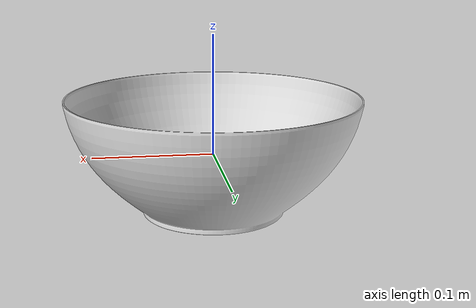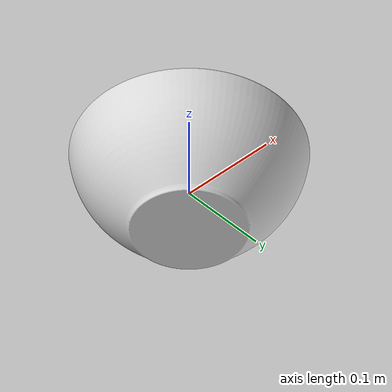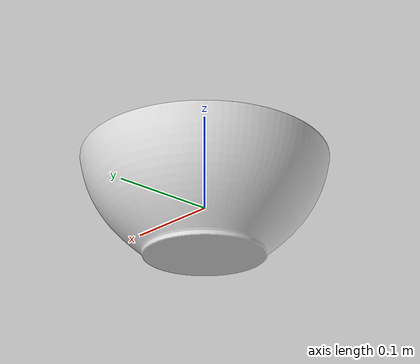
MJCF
<?xml version="1.0" ?>
<mujoco model="large_bowl">
	<compiler meshdir="large_bowl/meshes" texturedir="large_bowl/textures" angle="radian" autolimits="true" balanceinertia="true" boundmass="0.000001" boundinertia="0.000001"/>
	<default>
		<default class="visual">
			<geom contype="0" conaffinity="0"/>
		</default>
		<default class="collision">
			<geom rgba="1.0 0.0 0.0 0.0"/>
		</default>
	</default>
	<asset>
		<mesh name="BowlLargeSize" file="stl/BowlLargeSize.stl" scale="1.0 1.0 1.0"/>
		<mesh name="BowlLargeSize_001" file="stl/BowlLargeSize_001.stl" scale="1.0 1.0 1.0"/>
		<mesh name="BowlLargeSize_002" file="stl/BowlLargeSize_002.stl" scale="1.0 1.0 1.0"/>
		<mesh name="BowlLargeSize_003" file="stl/BowlLargeSize_003.stl" scale="1.0 1.0 1.0"/>
		<mesh name="BowlLargeSize_004" file="stl/BowlLargeSize_004.stl" scale="1.0 1.0 1.0"/>
		<mesh name="BowlLargeSize_005" file="stl/BowlLargeSize_005.stl" scale="1.0 1.0 1.0"/>
		<mesh name="BowlLargeSize_006" file="stl/BowlLargeSize_006.stl" scale="1.0 1.0 1.0"/>
		<mesh name="BowlLargeSize_007" file="stl/BowlLargeSize_007.stl" scale="1.0 1.0 1.0"/>
		<mesh name="BowlLargeSize_008" file="stl/BowlLargeSize_008.stl" scale="1.0 1.0 1.0"/>
		<mesh name="BowlLargeSize_009" file="stl/BowlLargeSize_009.stl" scale="1.0 1.0 1.0"/>
		<mesh name="BowlLargeSize_010" file="stl/BowlLargeSize_010.stl" scale="1.0 1.0 1.0"/>
		<mesh name="BowlLargeSize_011" file="stl/BowlLargeSize_011.stl" scale="1.0 1.0 1.0"/>
		<mesh name="BowlLargeSize_012" file="stl/BowlLargeSize_012.stl" scale="1.0 1.0 1.0"/>
		<mesh name="BowlLargeSize_013" file="stl/BowlLargeSize_013.stl" scale="1.0 1.0 1.0"/>
		<mesh name="BowlLargeSize_014" file="stl/BowlLargeSize_014.stl" scale="1.0 1.0 1.0"/>
		<mesh name="BowlLargeSize_015" file="stl/BowlLargeSize_015.stl" scale="1.0 1.0 1.0"/>
		<mesh name="BowlLargeSize_016" file="stl/BowlLargeSize_016.stl" scale="1.0 1.0 1.0"/>
		<mesh name="BowlLargeSize_017" file="stl/BowlLargeSize_017.stl" scale="1.0 1.0 1.0"/>
		<mesh name="BowlLargeSize_018" file="stl/BowlLargeSize_018.stl" scale="1.0 1.0 1.0"/>
		<mesh name="BowlLargeSize_019" file="stl/BowlLargeSize_019.stl" scale="1.0 1.0 1.0"/>
		<mesh name="BowlLargeSize_020" file="stl/BowlLargeSize_020.stl" scale="1.0 1.0 1.0"/>
		<mesh name="BowlLargeSize_021" file="stl/BowlLargeSize_021.stl" scale="1.0 1.0 1.0"/>
		<mesh name="BowlLargeSize_022" file="stl/BowlLargeSize_022.stl" scale="1.0 1.0 1.0"/>
		<mesh name="BowlLargeSize_023" file="stl/BowlLargeSize_023.stl" scale="1.0 1.0 1.0"/>
		<mesh name="BowlLargeSize_024" file="stl/BowlLargeSize_024.stl" scale="1.0 1.0 1.0"/>
		<mesh name="BowlLargeSize_025" file="stl/BowlLargeSize_025.stl" scale="1.0 1.0 1.0"/>
		<mesh name="BowlLargeSize_026" file="stl/BowlLargeSize_026.stl" scale="1.0 1.0 1.0"/>
		<mesh name="BowlLargeSize_027" file="stl/BowlLargeSize_027.stl" scale="1.0 1.0 1.0"/>
		<mesh name="BowlLargeSize_028" file="stl/BowlLargeSize_028.stl" scale="1.0 1.0 1.0"/>
		<mesh name="BowlLargeSize_029" file="stl/BowlLargeSize_029.stl" scale="1.0 1.0 1.0"/>
		<mesh name="BowlLargeSize_030" file="stl/BowlLargeSize_030.stl" scale="1.0 1.0 1.0"/>
		<mesh name="BowlLargeSize_031" file="stl/BowlLargeSize_031.stl" scale="1.0 1.0 1.0"/>
		<mesh name="BowlLargeSize_032" file="stl/BowlLargeSize_032.stl" scale="1.0 1.0 1.0"/>
		<mesh name="BowlLargeSize_033" file="stl/BowlLargeSize_033.stl" scale="1.0 1.0 1.0"/>
		<mesh name="BowlLargeSize_034" file="stl/BowlLargeSize_034.stl" scale="1.0 1.0 1.0"/>
		<mesh name="BowlLargeSize_035" file="stl/BowlLargeSize_035.stl" scale="1.0 1.0 1.0"/>
		<mesh name="BowlLargeSize_036" file="stl/BowlLargeSize_036.stl" scale="1.0 1.0 1.0"/>
		<mesh name="BowlLargeSize_037" file="stl/BowlLargeSize_037.stl" scale="1.0 1.0 1.0"/>
		<mesh name="BowlLargeSize_038" file="stl/BowlLargeSize_038.stl" scale="1.0 1.0 1.0"/>
		<mesh name="BowlLargeSize_039" file="stl/BowlLargeSize_039.stl" scale="1.0 1.0 1.0"/>
		<mesh name="BowlLargeSize_040" file="stl/BowlLargeSize_040.stl" scale="1.0 1.0 1.0"/>
		<mesh name="BowlLargeSize_041" file="stl/BowlLargeSize_041.stl" scale="1.0 1.0 1.0"/>
		<mesh name="BowlLargeSize_042" file="stl/BowlLargeSize_042.stl" scale="1.0 1.0 1.0"/>
		<mesh name="BowlLargeSize_043" file="stl/BowlLargeSize_043.stl" scale="1.0 1.0 1.0"/>
		<mesh name="BowlLargeSize_044" file="stl/BowlLargeSize_044.stl" scale="1.0 1.0 1.0"/>
		<mesh name="BowlLargeSize_045" file="stl/BowlLargeSize_045.stl" scale="1.0 1.0 1.0"/>
		<mesh name="BowlLargeSize_046" file="stl/BowlLargeSize_046.stl" scale="1.0 1.0 1.0"/>
		<mesh name="BowlLargeSize_047" file="stl/BowlLargeSize_047.stl" scale="1.0 1.0 1.0"/>
		<material name="M_BowlLargeSize" rgba="0.843500018119812 0.843500018119812 0.843500018119812 1.0" emission="0.0"/>
	</asset>
	<worldbody>
		<body name="large_bowl" pos="0.0 0.0 0.0" quat="1.0 0.0 0.0 0.0">
			<inertial mass="0.7227948904037476" pos="-4.625593987839238e-07 -2.708555868480289e-08 -0.01416116114705801" quat="-0.6723506450653076 8.016248216335953e-07 -7.032417101981991e-07 0.7402328252792358" diaginertia="0.003389970865100622 0.003389986464753747 0.0052571543492376804"/>
			<geom name="BowlLargeSize" type="mesh" pos="0.0 0.0 0.0" quat="1.0 0.0 0.0 0.0" mesh="BowlLargeSize" material="M_BowlLargeSize" class="visual"/>
			<geom name="BowlLargeSize_001" type="mesh" pos="0.0 0.0 0.0" quat="1.0 0.0 0.0 0.0" mesh="BowlLargeSize_001" class="collision"/>
			<geom name="BowlLargeSize_002" type="mesh" pos="0.0 0.0 0.0" quat="1.0 0.0 0.0 0.0" mesh="BowlLargeSize_002" class="collision"/>
			<geom name="BowlLargeSize_003" type="mesh" pos="0.0 0.0 0.0" quat="1.0 0.0 0.0 0.0" mesh="BowlLargeSize_003" class="collision"/>
			<geom name="BowlLargeSize_004" type="mesh" pos="0.0 0.0 0.0" quat="1.0 0.0 0.0 0.0" mesh="BowlLargeSize_004" class="collision"/>
			<geom name="BowlLargeSize_005" type="mesh" pos="0.0 0.0 0.0" quat="1.0 0.0 0.0 0.0" mesh="BowlLargeSize_005" class="collision"/>
			<geom name="BowlLargeSize_006" type="mesh" pos="0.0 0.0 0.0" quat="1.0 0.0 0.0 0.0" mesh="BowlLargeSize_006" class="collision"/>
			<geom name="BowlLargeSize_007" type="mesh" pos="0.0 0.0 0.0" quat="1.0 0.0 0.0 0.0" mesh="BowlLargeSize_007" class="collision"/>
			<geom name="BowlLargeSize_008" type="mesh" pos="0.0 0.0 0.0" quat="1.0 0.0 0.0 0.0" mesh="BowlLargeSize_008" class="collision"/>
			<geom name="BowlLargeSize_009" type="mesh" pos="0.0 0.0 0.0" quat="1.0 0.0 0.0 0.0" mesh="BowlLargeSize_009" class="collision"/>
			<geom name="BowlLargeSize_010" type="mesh" pos="0.0 0.0 0.0" quat="1.0 0.0 0.0 0.0" mesh="BowlLargeSize_010" class="collision"/>
			<geom name="BowlLargeSize_011" type="mesh" pos="0.0 0.0 0.0" quat="1.0 0.0 0.0 0.0" mesh="BowlLargeSize_011" class="collision"/>
			<geom name="BowlLargeSize_012" type="mesh" pos="0.0 0.0 0.0" quat="1.0 0.0 0.0 0.0" mesh="BowlLargeSize_012" class="collision"/>
			<geom name="BowlLargeSize_013" type="mesh" pos="0.0 0.0 0.0" quat="1.0 0.0 0.0 0.0" mesh="BowlLargeSize_013" class="collision"/>
			<geom name="BowlLargeSize_014" type="mesh" pos="0.0 0.0 0.0" quat="1.0 0.0 0.0 0.0" mesh="BowlLargeSize_014" class="collision"/>
			<geom name="BowlLargeSize_015" type="mesh" pos="0.0 0.0 0.0" quat="1.0 0.0 0.0 0.0" mesh="BowlLargeSize_015" class="collision"/>
			<geom name="BowlLargeSize_016" type="mesh" pos="0.0 0.0 0.0" quat="1.0 0.0 0.0 0.0" mesh="BowlLargeSize_016" class="collision"/>
			<geom name="BowlLargeSize_017" type="mesh" pos="0.0 0.0 0.0" quat="1.0 0.0 0.0 0.0" mesh="BowlLargeSize_017" class="collision"/>
			<geom name="BowlLargeSize_018" type="mesh" pos="0.0 0.0 0.0" quat="1.0 0.0 0.0 0.0" mesh="BowlLargeSize_018" class="collision"/>
			<geom name="BowlLargeSize_019" type="mesh" pos="0.0 0.0 0.0" quat="1.0 0.0 0.0 0.0" mesh="BowlLargeSize_019" class="collision"/>
			<geom name="BowlLargeSize_020" type="mesh" pos="0.0 0.0 0.0" quat="1.0 0.0 0.0 0.0" mesh="BowlLargeSize_020" class="collision"/>
			<geom name="BowlLargeSize_021" type="mesh" pos="0.0 0.0 0.0" quat="1.0 0.0 0.0 0.0" mesh="BowlLargeSize_021" class="collision"/>
			<geom name="BowlLargeSize_022" type="mesh" pos="0.0 0.0 0.0" quat="1.0 0.0 0.0 0.0" mesh="BowlLargeSize_022" class="collision"/>
			<geom name="BowlLargeSize_023" type="mesh" pos="0.0 0.0 0.0" quat="1.0 0.0 0.0 0.0" mesh="BowlLargeSize_023" class="collision"/>
			<geom name="BowlLargeSize_024" type="mesh" pos="0.0 0.0 0.0" quat="1.0 0.0 0.0 0.0" mesh="BowlLargeSize_024" class="collision"/>
			<geom name="BowlLargeSize_025" type="mesh" pos="0.0 0.0 0.0" quat="1.0 0.0 0.0 0.0" mesh="BowlLargeSize_025" class="collision"/>
			<geom name="BowlLargeSize_026" type="mesh" pos="0.0 0.0 0.0" quat="1.0 0.0 0.0 0.0" mesh="BowlLargeSize_026" class="collision"/>
			<geom name="BowlLargeSize_027" type="mesh" pos="0.0 0.0 0.0" quat="1.0 0.0 0.0 0.0" mesh="BowlLargeSize_027" class="collision"/>
			<geom name="BowlLargeSize_028" type="mesh" pos="0.0 0.0 0.0" quat="1.0 0.0 0.0 0.0" mesh="BowlLargeSize_028" class="collision"/>
			<geom name="BowlLargeSize_029" type="mesh" pos="0.0 0.0 0.0" quat="1.0 0.0 0.0 0.0" mesh="BowlLargeSize_029" class="collision"/>
			<geom name="BowlLargeSize_030" type="mesh" pos="0.0 0.0 0.0" quat="1.0 0.0 0.0 0.0" mesh="BowlLargeSize_030" class="collision"/>
			<geom name="BowlLargeSize_031" type="mesh" pos="0.0 0.0 0.0" quat="1.0 0.0 0.0 0.0" mesh="BowlLargeSize_031" class="collision"/>
			<geom name="BowlLargeSize_032" type="mesh" pos="0.0 0.0 0.0" quat="1.0 0.0 0.0 0.0" mesh="BowlLargeSize_032" class="collision"/>
			<geom name="BowlLargeSize_033" type="mesh" pos="0.0 0.0 0.0" quat="1.0 0.0 0.0 0.0" mesh="BowlLargeSize_033" class="collision"/>
			<geom name="BowlLargeSize_034" type="mesh" pos="0.0 0.0 0.0" quat="1.0 0.0 0.0 0.0" mesh="BowlLargeSize_034" class="collision"/>
			<geom name="BowlLargeSize_035" type="mesh" pos="0.0 0.0 0.0" quat="1.0 0.0 0.0 0.0" mesh="BowlLargeSize_035" class="collision"/>
			<geom name="BowlLargeSize_036" type="mesh" pos="0.0 0.0 0.0" quat="1.0 0.0 0.0 0.0" mesh="BowlLargeSize_036" class="collision"/>
			<geom name="BowlLargeSize_037" type="mesh" pos="0.0 0.0 0.0" quat="1.0 0.0 0.0 0.0" mesh="BowlLargeSize_037" class="collision"/>
			<geom name="BowlLargeSize_038" type="mesh" pos="0.0 0.0 0.0" quat="1.0 0.0 0.0 0.0" mesh="BowlLargeSize_038" class="collision"/>
			<geom name="BowlLargeSize_039" type="mesh" pos="0.0 0.0 0.0" quat="1.0 0.0 0.0 0.0" mesh="BowlLargeSize_039" class="collision"/>
			<geom name="BowlLargeSize_040" type="mesh" pos="0.0 0.0 0.0" quat="1.0 0.0 0.0 0.0" mesh="BowlLargeSize_040" class="collision"/>
			<geom name="BowlLargeSize_041" type="mesh" pos="0.0 0.0 0.0" quat="1.0 0.0 0.0 0.0" mesh="BowlLargeSize_041" class="collision"/>
			<geom name="BowlLargeSize_042" type="mesh" pos="0.0 0.0 0.0" quat="1.0 0.0 0.0 0.0" mesh="BowlLargeSize_042" class="collision"/>
			<geom name="BowlLargeSize_043" type="mesh" pos="0.0 0.0 0.0" quat="1.0 0.0 0.0 0.0" mesh="BowlLargeSize_043" class="collision"/>
			<geom name="BowlLargeSize_044" type="mesh" pos="0.0 0.0 0.0" quat="1.0 0.0 0.0 0.0" mesh="BowlLargeSize_044" class="collision"/>
			<geom name="BowlLargeSize_045" type="mesh" pos="0.0 0.0 0.0" quat="1.0 0.0 0.0 0.0" mesh="BowlLargeSize_045" class="collision"/>
			<geom name="BowlLargeSize_046" type="mesh" pos="0.0 0.0 0.0" quat="1.0 0.0 0.0 0.0" mesh="BowlLargeSize_046" class="collision"/>
			<geom name="BowlLargeSize_047" type="mesh" pos="0.0 0.0 0.0" quat="1.0 0.0 0.0 0.0" mesh="BowlLargeSize_047" class="collision"/>
		</body>
	</worldbody>
	<equality/>
</mujoco>
